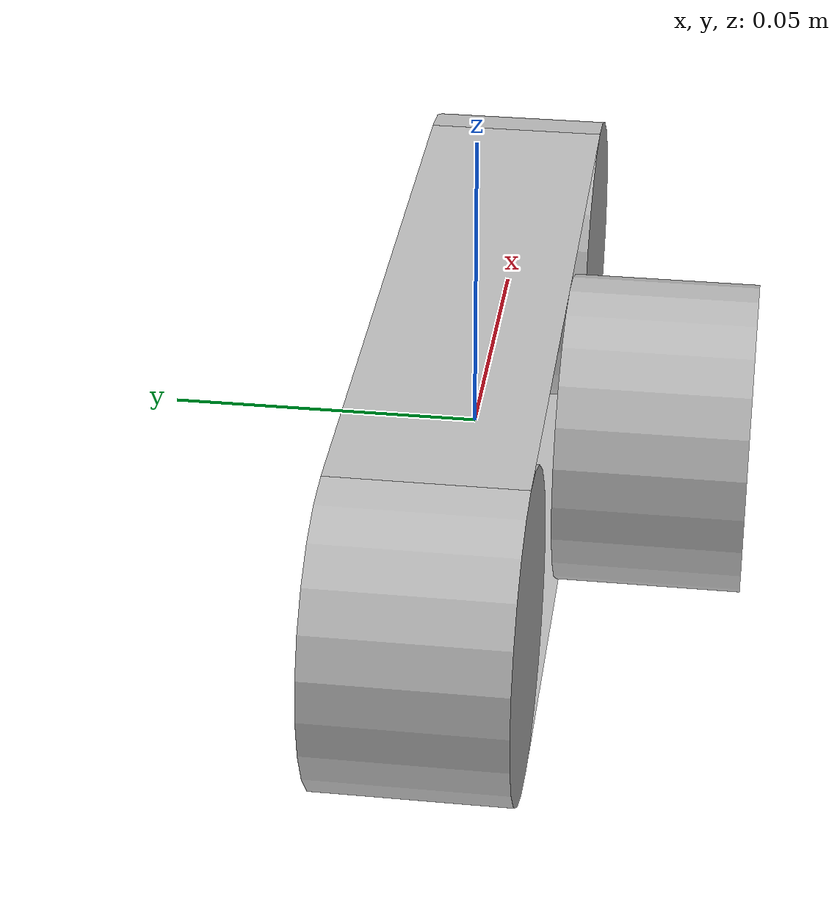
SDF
<?xml version='1.0'?>
<sdf version='1.6'>
		<model name="Treel">
			<self_collide>true</self_collide>
			<pose>0.0 0.0 0.0 0.0 0.0 0.0</pose>
			<!-- Start of parts of the pmodel Treel -->
			<!-- End of parts of the pmodel Treel -->

			<!-- Start of links of the pmodel Treel -->
			<!-- link full name is Treel::Wheel -->
			<link name="1-Wheel">
					<pose>0.0 -0.029999999329447746 0.0 1.5707499980926514 0.0 0.0</pose>
					<inertial>
						<pose>0.0 0.0 0.0 0.0 0.0 0.0</pose>
						<inertia>
							<ixx>1.0</ixx>
							<ixy>0.0</ixy>
							<ixz>0.0</ixz>
							<iyy>1.0</iyy>
							<iyz>0.0</iyz>
							<izz>1.0</izz>
						</inertia>
						<mass>1.0</mass>
					</inertial>
					<!-- body full name is Treel::Wheel::Wheel -->
					<collision name="1--Wheel">
						<laser_retro>0.0</laser_retro>
						<pose>0.0 0.0 0.0 0.0 0.0 0.0</pose>
						<geometry>
							<cylinder>
								<radius>0.025025001541152614</radius>
								<length>0.029999999329447746</length>
							</cylinder>
						</geometry>
						<surface>
							<bounce>
								<restitution_coefficient>0.0</restitution_coefficient>
								<threshold>100000.0</threshold>
							</bounce>
							<friction>
								<ode>
									<mu>1.0</mu>
									<mu2>1.0</mu2>
									<fdir1>0.0 0.0 0.0</fdir1>
									<slip1>0.0</slip1>
									<slip2>0.0</slip2>
								</ode>
								<torsional>
									<coefficient>1.0</coefficient>
									<surface_radius>0.0</surface_radius>
								</torsional>
							</friction>
						</surface>
					</collision>
					<visual name="1--Wheel">
						<laser_retro>0.0</laser_retro>
						<pose>0.0 0.0 0.0 0.0 0.0 0.0</pose>
						<geometry>
							<cylinder>
								<radius>0.025025001541152614</radius>
								<length>0.029999999329447746</length>
							</cylinder>
						</geometry>
						<surface>
							<bounce>
								<restitution_coefficient>0.0</restitution_coefficient>
								<threshold>100000.0</threshold>
							</bounce>
							<friction>
								<ode>
									<mu>1.0</mu>
									<mu2>1.0</mu2>
									<fdir1>0.0 0.0 0.0</fdir1>
									<slip1>0.0</slip1>
									<slip2>0.0</slip2>
								</ode>
								<torsional>
									<coefficient>1.0</coefficient>
									<surface_radius>0.0</surface_radius>
								</torsional>
							</friction>
						</surface>
					</visual>
			</link>
			<!-- link full name is Treel::Track -->
			<link name="2-Track">
					<pose>0.0 0.0 0.0 0.0 0.0 0.0</pose>
					<inertial>
						<pose>0.0 0.0 0.0 0.0 0.0 0.0</pose>
						<inertia>
							<ixx>1.0</ixx>
							<ixy>0.0</ixy>
							<ixz>0.0</ixz>
							<iyy>1.0</iyy>
							<iyz>0.0</iyz>
							<izz>1.0</izz>
						</inertia>
						<mass>1.0</mass>
					</inertial>
					<!-- body full name is Treel::Track::Top -->
					<collision name="2--Top">
						<laser_retro>0.0</laser_retro>
						<pose>0.0 0.0 0.02500000037252903 0.0 0.0 0.0</pose>
						<geometry>
							<box>
								<size>0.12000000104308128 0.029999999329447746 0</size>
							</box>
						</geometry>
						<surface>
							<bounce>
								<restitution_coefficient>0.0</restitution_coefficient>
								<threshold>100000.0</threshold>
							</bounce>
							<friction>
								<ode>
									<mu>1.0</mu>
									<mu2>1.0</mu2>
									<fdir1>0.0 0.0 0.0</fdir1>
									<slip1>0.0</slip1>
									<slip2>0.0</slip2>
								</ode>
								<torsional>
									<coefficient>1.0</coefficient>
									<surface_radius>0.0</surface_radius>
								</torsional>
							</friction>
						</surface>
					</collision>
					<visual name="2--Top">
						<laser_retro>0.0</laser_retro>
						<pose>0.0 0.0 0.02500000037252903 0.0 0.0 0.0</pose>
						<geometry>
							<box>
								<size>0.12000000104308128 0.029999999329447746 0</size>
							</box>
						</geometry>
						<surface>
							<bounce>
								<restitution_coefficient>0.0</restitution_coefficient>
								<threshold>100000.0</threshold>
							</bounce>
							<friction>
								<ode>
									<mu>1.0</mu>
									<mu2>1.0</mu2>
									<fdir1>0.0 0.0 0.0</fdir1>
									<slip1>0.0</slip1>
									<slip2>0.0</slip2>
								</ode>
								<torsional>
									<coefficient>1.0</coefficient>
									<surface_radius>0.0</surface_radius>
								</torsional>
							</friction>
						</surface>
					</visual>
					<!-- body full name is Treel::Track::Bottom -->
					<collision name="3--Bottom">
						<laser_retro>0.0</laser_retro>
						<pose>0.0 0.0 -0.02500000037252903 0.0 0.0 0.0</pose>
						<geometry>
							<box>
								<size>0.12000000104308128 0.029999999329447746 0</size>
							</box>
						</geometry>
						<surface>
							<bounce>
								<restitution_coefficient>0.0</restitution_coefficient>
								<threshold>100000.0</threshold>
							</bounce>
							<friction>
								<ode>
									<mu>1.0</mu>
									<mu2>1.0</mu2>
									<fdir1>0.0 0.0 0.0</fdir1>
									<slip1>0.0</slip1>
									<slip2>0.0</slip2>
								</ode>
								<torsional>
									<coefficient>1.0</coefficient>
									<surface_radius>0.0</surface_radius>
								</torsional>
							</friction>
						</surface>
					</collision>
					<visual name="3--Bottom">
						<laser_retro>0.0</laser_retro>
						<pose>0.0 0.0 -0.02500000037252903 0.0 0.0 0.0</pose>
						<geometry>
							<box>
								<size>0.12000000104308128 0.029999999329447746 0</size>
							</box>
						</geometry>
						<surface>
							<bounce>
								<restitution_coefficient>0.0</restitution_coefficient>
								<threshold>100000.0</threshold>
							</bounce>
							<friction>
								<ode>
									<mu>1.0</mu>
									<mu2>1.0</mu2>
									<fdir1>0.0 0.0 0.0</fdir1>
									<slip1>0.0</slip1>
									<slip2>0.0</slip2>
								</ode>
								<torsional>
									<coefficient>1.0</coefficient>
									<surface_radius>0.0</surface_radius>
								</torsional>
							</friction>
						</surface>
					</visual>
					<!-- body full name is Treel::Track::FrontWheel -->
					<collision name="4--FrontWheel">
						<laser_retro>0.0</laser_retro>
						<pose>-0.06000000052154064 0.0 0.0 1.5707499980926514 0.0 0.0</pose>
						<geometry>
							<cylinder>
								<radius>0.02500000037252903</radius>
								<length>0.029999999329447746</length>
							</cylinder>
						</geometry>
						<surface>
							<bounce>
								<restitution_coefficient>0.0</restitution_coefficient>
								<threshold>100000.0</threshold>
							</bounce>
							<friction>
								<ode>
									<mu>1.0</mu>
									<mu2>1.0</mu2>
									<fdir1>0.0 0.0 0.0</fdir1>
									<slip1>0.0</slip1>
									<slip2>0.0</slip2>
								</ode>
								<torsional>
									<coefficient>1.0</coefficient>
									<surface_radius>0.0</surface_radius>
								</torsional>
							</friction>
						</surface>
					</collision>
					<visual name="4--FrontWheel">
						<laser_retro>0.0</laser_retro>
						<pose>-0.06000000052154064 0.0 0.0 1.5707499980926514 0.0 0.0</pose>
						<geometry>
							<cylinder>
								<radius>0.02500000037252903</radius>
								<length>0.029999999329447746</length>
							</cylinder>
						</geometry>
						<surface>
							<bounce>
								<restitution_coefficient>0.0</restitution_coefficient>
								<threshold>100000.0</threshold>
							</bounce>
							<friction>
								<ode>
									<mu>1.0</mu>
									<mu2>1.0</mu2>
									<fdir1>0.0 0.0 0.0</fdir1>
									<slip1>0.0</slip1>
									<slip2>0.0</slip2>
								</ode>
								<torsional>
									<coefficient>1.0</coefficient>
									<surface_radius>0.0</surface_radius>
								</torsional>
							</friction>
						</surface>
					</visual>
					<!-- body full name is Treel::Track::BackWheel -->
					<collision name="5--BackWheel">
						<laser_retro>0.0</laser_retro>
						<pose>0.06000000052154064 0.0 0.0 1.5707499980926514 0.0 0.0</pose>
						<geometry>
							<cylinder>
								<radius>0.02500000037252903</radius>
								<length>0.029999999329447746</length>
							</cylinder>
						</geometry>
						<surface>
							<bounce>
								<restitution_coefficient>0.0</restitution_coefficient>
								<threshold>100000.0</threshold>
							</bounce>
							<friction>
								<ode>
									<mu>1.0</mu>
									<mu2>1.0</mu2>
									<fdir1>0.0 0.0 0.0</fdir1>
									<slip1>0.0</slip1>
									<slip2>0.0</slip2>
								</ode>
								<torsional>
									<coefficient>1.0</coefficient>
									<surface_radius>0.0</surface_radius>
								</torsional>
							</friction>
						</surface>
					</collision>
					<visual name="5--BackWheel">
						<laser_retro>0.0</laser_retro>
						<pose>0.06000000052154064 0.0 0.0 1.5707499980926514 0.0 0.0</pose>
						<geometry>
							<cylinder>
								<radius>0.02500000037252903</radius>
								<length>0.029999999329447746</length>
							</cylinder>
						</geometry>
						<surface>
							<bounce>
								<restitution_coefficient>0.0</restitution_coefficient>
								<threshold>100000.0</threshold>
							</bounce>
							<friction>
								<ode>
									<mu>1.0</mu>
									<mu2>1.0</mu2>
									<fdir1>0.0 0.0 0.0</fdir1>
									<slip1>0.0</slip1>
									<slip2>0.0</slip2>
								</ode>
								<torsional>
									<coefficient>1.0</coefficient>
									<surface_radius>0.0</surface_radius>
								</torsional>
							</friction>
						</surface>
					</visual>
			</link>
			<!-- End of links of the pmodel Treel -->

			<!-- Start of joints of the pmodel Treel -->
			<!-- End of joints of the pmodel Treel -->

			<!-- Start of fixed connections of the pmodel Treel -->
			<!-- End of fixed connections of the pmodel Treel -->
		</model>
</sdf>
